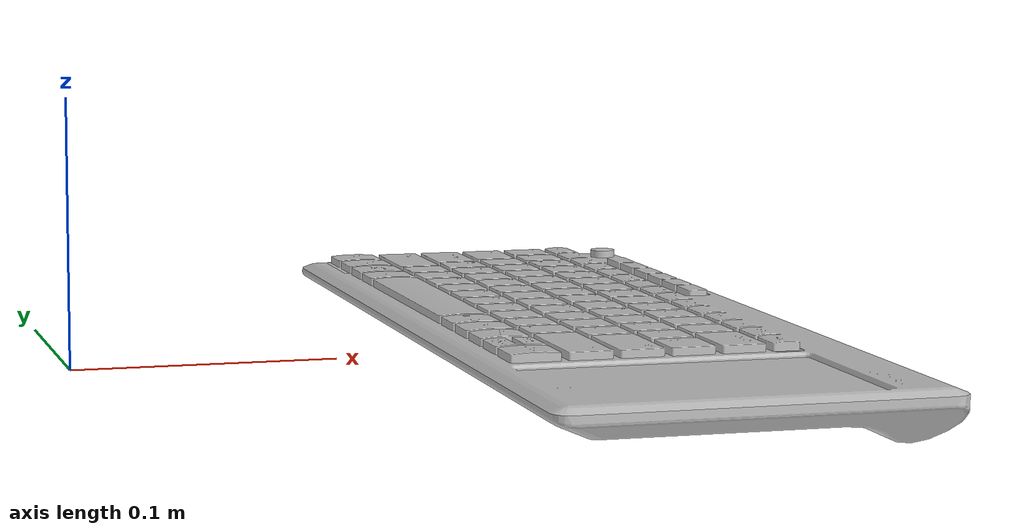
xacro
<?xml version="1.0" encoding="utf-8"?>
<robot
  name="keyboard">
  <link
    name="base">
    <inertial>
      <origin
        xyz="0.20298913431108743 0.004842857231127 -0.00965568277916037"
        rpy="0 0 -1.570796325" />
      <mass
        value="0.600478305590293" />
      <inertia
        ixx="0.000998570477714973"
        ixy="-6.45011254701907E-06"
        ixz="2.21581605764142E-05"
        iyy="0.00680233708746064"
        iyz="-2.33214552616074E-05"
        izz="0.00581941436503155" />
    </inertial>
    <visual>
      <origin
        xyz="0.2 0 0"
        rpy="0 0 -1.570796325" />
      <geometry>
        <mesh
          filename="package://keyboard_description/meshes/keyboard_gazebo.STL" />
      </geometry>
      <material
        name="">
        <color
          rgba="0.752941176470588 0.752941176470588 0.752941176470588 1" />
      </material>
    </visual>
    <collision>
      <origin
        xyz="0.2 0 0"
        rpy="0 0 -1.570796325" />
      <geometry>
        <mesh
          filename="package://keyboard_description/meshes/keyboard_gazebo.STL" />
      </geometry>
    </collision>
  </link>
  <gazebo reference="base">
      <material>Gazebo/BlackTransparent</material>
  </gazebo>
</robot>
